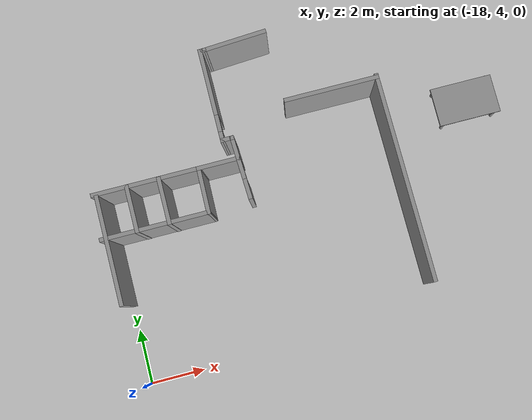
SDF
<sdf version="1.6">
 <world name="default">
  <model name="ground_plane">
   <static>1</static>
   <link name="link">
    <collision name="collision">
     <geometry><plane><normal>0 0 1</normal><size>100 100</size></plane></geometry>
     <surface>
      <contact><collide_bitmask>65535</collide_bitmask></contact>
      <friction><ode><mu>100</mu><mu2>50</mu2></ode></friction>
     </surface>
    </collision>
    <visual name="visual">
     <cast_shadows>0</cast_shadows>
     <geometry><plane><normal>0 0 1</normal><size>100 100</size></plane></geometry>
     <material>
      <script><uri>file://media/materials/scripts/gazebo.material</uri><name>Gazebo/Grey</name></script>
     </material>
    </visual>
   </link>
  </model>
  <model name="six_floor">
   <link name="Wall_164">
    <pose>-8.84778 6.9915 0 0 -0 1.58022</pose>
    <visual name="Wall_164_Visual">
     <pose>0 0 1.25 0 -0 0</pose>
     <geometry><box><size>7.67852 0.15 2.5</size></box></geometry>
     <material>
      <script><uri>file://media/materials/scripts/gazebo.material</uri><name>Gazebo/Grey</name></script>
      <ambient>1 1 1 1</ambient>
     </material>
     <meta><layer>0</layer></meta>
    </visual>
    <collision name="Wall_164_Collision">
     <pose>0 0 1.25 0 -0 0</pose>
     <geometry><box><size>7.67852 0.15 2.5</size></box></geometry>
     <surface>
      <friction>
       <ode><mu>1</mu><mu2>1</mu2><fdir1>0 0 0</fdir1><slip1>0</slip1><slip2>0</slip2></ode>
       <torsional>
        <coefficient>1</coefficient>
        <patch_radius>0</patch_radius>
        <surface_radius>0</surface_radius>
        <use_patch_radius>1</use_patch_radius>
        <ode><slip>0</slip></ode>
       </torsional>
      </friction>
      <bounce><restitution_coefficient>0</restitution_coefficient><threshold>1e+06</threshold></bounce>
      <contact>
       <collide_without_contact>0</collide_without_contact>
       <collide_without_contact_bitmask>1</collide_without_contact_bitmask>
       <collide_bitmask>1</collide_bitmask>
       <ode>
        <soft_cfm>0</soft_cfm>
        <soft_erp>0.2</soft_erp>
        <kp>1e+13</kp>
        <kd>1</kd>
        <max_vel>0.01</max_vel>
        <min_depth>0</min_depth>
       </ode>
       <bullet>
        <split_impulse>1</split_impulse>
        <split_impulse_penetration_threshold>-0.01</split_impulse_penetration_threshold>
        <soft_cfm>0</soft_cfm>
        <soft_erp>0.2</soft_erp>
        <kp>1e+13</kp>
        <kd>1</kd>
       </bullet>
      </contact>
     </surface>
    </collision>
   </link>
   <link name="Wall_165">
    <pose>-10.5582 10.702 0 0 -0 3.14159</pose>
    <visual name="Wall_165_Visual">
     <pose>0 0 1.25 0 -0 0</pose>
     <geometry><box><size>3.5 0.15 2.5</size></box></geometry>
     <material>
      <script><uri>file://media/materials/scripts/gazebo.material</uri><name>Gazebo/Grey</name></script>
      <ambient>1 1 1 1</ambient>
     </material>
     <meta><layer>0</layer></meta>
    </visual>
    <collision name="Wall_165_Collision">
     <pose>0 0 1.25 0 -0 0</pose>
     <geometry><box><size>3.5 0.15 2.5</size></box></geometry>
     <surface>
      <friction>
       <ode><mu>1</mu><mu2>1</mu2><fdir1>0 0 0</fdir1><slip1>0</slip1><slip2>0</slip2></ode>
       <torsional>
        <coefficient>1</coefficient>
        <patch_radius>0</patch_radius>
        <surface_radius>0</surface_radius>
        <use_patch_radius>1</use_patch_radius>
        <ode><slip>0</slip></ode>
       </torsional>
      </friction>
      <bounce><restitution_coefficient>0</restitution_coefficient><threshold>1e+06</threshold></bounce>
      <contact>
       <collide_without_contact>0</collide_without_contact>
       <collide_without_contact_bitmask>1</collide_without_contact_bitmask>
       <collide_bitmask>1</collide_bitmask>
       <ode>
        <soft_cfm>0</soft_cfm>
        <soft_erp>0.2</soft_erp>
        <kp>1e+13</kp>
        <kd>1</kd>
        <max_vel>0.01</max_vel>
        <min_depth>0</min_depth>
       </ode>
       <bullet>
        <split_impulse>1</split_impulse>
        <split_impulse_penetration_threshold>-0.01</split_impulse_penetration_threshold>
        <soft_cfm>0</soft_cfm>
        <soft_erp>0.2</soft_erp>
        <kp>1e+13</kp>
        <kd>1</kd>
       </bullet>
      </contact>
     </surface>
    </collision>
   </link>
   <link name="Wall_167">
    <pose>-14.3723 8.75538 0 0 0 -1.51974</pose>
    <visual name="Wall_167_Visual_0">
     <pose>-0.733465 0 1.25 0 -0 0</pose>
     <geometry><box><size>0.895207 0.15 2.5</size></box></geometry>
     <material>
      <script><uri>file://media/materials/scripts/gazebo.material</uri><name>Gazebo/Grey</name></script>
      <ambient>1 1 1 1</ambient>
     </material>
     <meta><layer>0</layer></meta>
    </visual>
    <visual name="Wall_167_Visual_1">
     <pose>0.807756 0 1.25 0 -0 0</pose>
     <geometry><box><size>0.746624 0.15 2.5</size></box></geometry>
     <material>
      <script><uri>file://media/materials/scripts/gazebo.material</uri><name>Gazebo/Grey</name></script>
      <ambient>1 1 1 1</ambient>
     </material>
     <meta><layer>0</layer></meta>
    </visual>
    <visual name="Wall_167_Visual_2">
     <pose>0.074292 0 2.25 0 -0 0</pose>
     <geometry><box><size>0.720305 0.15 0.5</size></box></geometry>
     <material>
      <script><uri>file://media/materials/scripts/gazebo.material</uri><name>Gazebo/Grey</name></script>
      <ambient>1 1 1 1</ambient>
     </material>
     <meta><layer>0</layer></meta>
    </visual>
    <collision name="Wall_167_Collision_0">
     <pose>-0.733465 0 1.25 0 -0 0</pose>
     <geometry><box><size>0.895207 0.15 2.5</size></box></geometry>
     <surface>
      <friction>
       <ode><mu>1</mu><mu2>1</mu2><fdir1>0 0 0</fdir1><slip1>0</slip1><slip2>0</slip2></ode>
       <torsional>
        <coefficient>1</coefficient>
        <patch_radius>0</patch_radius>
        <surface_radius>0</surface_radius>
        <use_patch_radius>1</use_patch_radius>
        <ode><slip>0</slip></ode>
       </torsional>
      </friction>
      <bounce><restitution_coefficient>0</restitution_coefficient><threshold>1e+06</threshold></bounce>
      <contact>
       <collide_without_contact>0</collide_without_contact>
       <collide_without_contact_bitmask>1</collide_without_contact_bitmask>
       <collide_bitmask>1</collide_bitmask>
       <ode>
        <soft_cfm>0</soft_cfm>
        <soft_erp>0.2</soft_erp>
        <kp>1e+13</kp>
        <kd>1</kd>
        <max_vel>0.01</max_vel>
        <min_depth>0</min_depth>
       </ode>
       <bullet>
        <split_impulse>1</split_impulse>
        <split_impulse_penetration_threshold>-0.01</split_impulse_penetration_threshold>
        <soft_cfm>0</soft_cfm>
        <soft_erp>0.2</soft_erp>
        <kp>1e+13</kp>
        <kd>1</kd>
       </bullet>
      </contact>
     </surface>
    </collision>
    <collision name="Wall_167_Collision_1">
     <pose>0.807756 0 1.25 0 -0 0</pose>
     <geometry><box><size>0.746624 0.15 2.5</size></box></geometry>
     <surface>
      <friction>
       <ode><mu>1</mu><mu2>1</mu2><fdir1>0 0 0</fdir1><slip1>0</slip1><slip2>0</slip2></ode>
       <torsional>
        <coefficient>1</coefficient>
        <patch_radius>0</patch_radius>
        <surface_radius>0</surface_radius>
        <use_patch_radius>1</use_patch_radius>
        <ode><slip>0</slip></ode>
       </torsional>
      </friction>
      <bounce><restitution_coefficient>0</restitution_coefficient><threshold>1e+06</threshold></bounce>
      <contact>
       <collide_without_contact>0</collide_without_contact>
       <collide_without_contact_bitmask>1</collide_without_contact_bitmask>
       <collide_bitmask>1</collide_bitmask>
       <ode>
        <soft_cfm>0</soft_cfm>
        <soft_erp>0.2</soft_erp>
        <kp>1e+13</kp>
        <kd>1</kd>
        <max_vel>0.01</max_vel>
        <min_depth>0</min_depth>
       </ode>
       <bullet>
        <split_impulse>1</split_impulse>
        <split_impulse_penetration_threshold>-0.01</split_impulse_penetration_threshold>
        <soft_cfm>0</soft_cfm>
        <soft_erp>0.2</soft_erp>
        <kp>1e+13</kp>
        <kd>1</kd>
       </bullet>
      </contact>
     </surface>
    </collision>
    <collision name="Wall_167_Collision_2">
     <pose>0.074292 0 2.25 0 -0 0</pose>
     <geometry><box><size>0.720305 0.15 0.5</size></box></geometry>
     <surface>
      <friction>
       <ode><mu>1</mu><mu2>1</mu2><fdir1>0 0 0</fdir1><slip1>0</slip1><slip2>0</slip2></ode>
       <torsional>
        <coefficient>1</coefficient>
        <patch_radius>0</patch_radius>
        <surface_radius>0</surface_radius>
        <use_patch_radius>1</use_patch_radius>
        <ode><slip>0</slip></ode>
       </torsional>
      </friction>
      <bounce><restitution_coefficient>0</restitution_coefficient><threshold>1e+06</threshold></bounce>
      <contact>
       <collide_without_contact>0</collide_without_contact>
       <collide_without_contact_bitmask>1</collide_without_contact_bitmask>
       <collide_bitmask>1</collide_bitmask>
       <ode>
        <soft_cfm>0</soft_cfm>
        <soft_erp>0.2</soft_erp>
        <kp>1e+13</kp>
        <kd>1</kd>
        <max_vel>0.01</max_vel>
        <min_depth>0</min_depth>
       </ode>
       <bullet>
        <split_impulse>1</split_impulse>
        <split_impulse_penetration_threshold>-0.01</split_impulse_penetration_threshold>
        <soft_cfm>0</soft_cfm>
        <soft_erp>0.2</soft_erp>
        <kp>1e+13</kp>
        <kd>1</kd>
       </bullet>
      </contact>
     </surface>
    </collision>
   </link>
   <link name="Wall_169">
    <pose>-14.6001 9.85875 0 0 -0 0.007397</pose>
    <visual name="Wall_169_Visual">
     <pose>0 0 1.25 0 -0 0</pose>
     <geometry><box><size>0.492569 0.15 2.5</size></box></geometry>
     <material>
      <script><uri>file://media/materials/scripts/gazebo.material</uri><name>Gazebo/Grey</name></script>
      <ambient>1 1 1 1</ambient>
     </material>
     <meta><layer>0</layer></meta>
    </visual>
    <collision name="Wall_169_Collision">
     <pose>0 0 1.25 0 -0 0</pose>
     <geometry><box><size>0.492569 0.15 2.5</size></box></geometry>
     <surface>
      <friction>
       <ode><mu>1</mu><mu2>1</mu2><fdir1>0 0 0</fdir1><slip1>0</slip1><slip2>0</slip2></ode>
       <torsional>
        <coefficient>1</coefficient>
        <patch_radius>0</patch_radius>
        <surface_radius>0</surface_radius>
        <use_patch_radius>1</use_patch_radius>
        <ode><slip>0</slip></ode>
       </torsional>
      </friction>
      <bounce><restitution_coefficient>0</restitution_coefficient><threshold>1e+06</threshold></bounce>
      <contact>
       <collide_without_contact>0</collide_without_contact>
       <collide_without_contact_bitmask>1</collide_without_contact_bitmask>
       <collide_bitmask>1</collide_bitmask>
       <ode>
        <soft_cfm>0</soft_cfm>
        <soft_erp>0.2</soft_erp>
        <kp>1e+13</kp>
        <kd>1</kd>
        <max_vel>0.01</max_vel>
        <min_depth>0</min_depth>
       </ode>
       <bullet>
        <split_impulse>1</split_impulse>
        <split_impulse_penetration_threshold>-0.01</split_impulse_penetration_threshold>
        <soft_cfm>0</soft_cfm>
        <soft_erp>0.2</soft_erp>
        <kp>1e+13</kp>
        <kd>1</kd>
       </bullet>
      </contact>
     </surface>
    </collision>
   </link>
   <link name="Wall_171">
    <pose>-15.1186 9.09421 0 0 -0 3.14159</pose>
    <visual name="Wall_171_Visual">
     <pose>0 0 1.25 0 -0 0</pose>
     <geometry><box><size>1.58 0.15 2.5</size></box></geometry>
     <material>
      <script><uri>file://media/materials/scripts/gazebo.material</uri><name>Gazebo/Grey</name></script>
      <ambient>1 1 1 1</ambient>
     </material>
     <meta><layer>0</layer></meta>
    </visual>
    <collision name="Wall_171_Collision">
     <pose>0 0 1.25 0 -0 0</pose>
     <geometry><box><size>1.58 0.15 2.5</size></box></geometry>
     <surface>
      <friction>
       <ode><mu>1</mu><mu2>1</mu2><fdir1>0 0 0</fdir1><slip1>0</slip1><slip2>0</slip2></ode>
       <torsional>
        <coefficient>1</coefficient>
        <patch_radius>0</patch_radius>
        <surface_radius>0</surface_radius>
        <use_patch_radius>1</use_patch_radius>
        <ode><slip>0</slip></ode>
       </torsional>
      </friction>
      <bounce><restitution_coefficient>0</restitution_coefficient><threshold>1e+06</threshold></bounce>
      <contact>
       <collide_without_contact>0</collide_without_contact>
       <collide_without_contact_bitmask>1</collide_without_contact_bitmask>
       <collide_bitmask>1</collide_bitmask>
       <ode>
        <soft_cfm>0</soft_cfm>
        <soft_erp>0.2</soft_erp>
        <kp>1e+13</kp>
        <kd>1</kd>
        <max_vel>0.01</max_vel>
        <min_depth>0</min_depth>
       </ode>
       <bullet>
        <split_impulse>1</split_impulse>
        <split_impulse_penetration_threshold>-0.01</split_impulse_penetration_threshold>
        <soft_cfm>0</soft_cfm>
        <soft_erp>0.2</soft_erp>
        <kp>1e+13</kp>
        <kd>1</kd>
       </bullet>
      </contact>
     </surface>
    </collision>
   </link>
   <link name="Wall_172">
    <pose>-15.8469 8.29421 0 0 0 -1.58746</pose>
    <visual name="Wall_172_Visual">
     <pose>0 0 1.25 0 -0 0</pose>
     <geometry><box><size>1.75089 0.15 2.5</size></box></geometry>
     <material>
      <script><uri>file://media/materials/scripts/gazebo.material</uri><name>Gazebo/Grey</name></script>
      <ambient>1 1 1 1</ambient>
     </material>
     <meta><layer>0</layer></meta>
    </visual>
    <collision name="Wall_172_Collision">
     <pose>0 0 1.25 0 -0 0</pose>
     <geometry><box><size>1.75089 0.15 2.5</size></box></geometry>
     <surface>
      <friction>
       <ode><mu>1</mu><mu2>1</mu2><fdir1>0 0 0</fdir1><slip1>0</slip1><slip2>0</slip2></ode>
       <torsional>
        <coefficient>1</coefficient>
        <patch_radius>0</patch_radius>
        <surface_radius>0</surface_radius>
        <use_patch_radius>1</use_patch_radius>
        <ode><slip>0</slip></ode>
       </torsional>
      </friction>
      <bounce><restitution_coefficient>0</restitution_coefficient><threshold>1e+06</threshold></bounce>
      <contact>
       <collide_without_contact>0</collide_without_contact>
       <collide_without_contact_bitmask>1</collide_without_contact_bitmask>
       <collide_bitmask>1</collide_bitmask>
       <ode>
        <soft_cfm>0</soft_cfm>
        <soft_erp>0.2</soft_erp>
        <kp>1e+13</kp>
        <kd>1</kd>
        <max_vel>0.01</max_vel>
        <min_depth>0</min_depth>
       </ode>
       <bullet>
        <split_impulse>1</split_impulse>
        <split_impulse_penetration_threshold>-0.01</split_impulse_penetration_threshold>
        <soft_cfm>0</soft_cfm>
        <soft_erp>0.2</soft_erp>
        <kp>1e+13</kp>
        <kd>1</kd>
       </bullet>
      </contact>
     </surface>
    </collision>
   </link>
   <link name="Wall_177">
    <pose>-17.7319 9.09421 0 0 -0 3.14159</pose>
    <visual name="Wall_177_Visual">
     <pose>0 0 1.25 0 -0 0</pose>
     <geometry><box><size>4 0.15 2.5</size></box></geometry>
     <material>
      <script><uri>file://media/materials/scripts/gazebo.material</uri><name>Gazebo/Grey</name></script>
      <ambient>1 1 1 1</ambient>
     </material>
     <meta><layer>0</layer></meta>
    </visual>
    <collision name="Wall_177_Collision">
     <pose>0 0 1.25 0 -0 0</pose>
     <geometry><box><size>4 0.15 2.5</size></box></geometry>
     <surface>
      <friction>
       <ode><mu>1</mu><mu2>1</mu2><fdir1>0 0 0</fdir1><slip1>0</slip1><slip2>0</slip2></ode>
       <torsional>
        <coefficient>1</coefficient>
        <patch_radius>0</patch_radius>
        <surface_radius>0</surface_radius>
        <use_patch_radius>1</use_patch_radius>
        <ode><slip>0</slip></ode>
       </torsional>
      </friction>
      <bounce><restitution_coefficient>0</restitution_coefficient><threshold>1e+06</threshold></bounce>
      <contact>
       <collide_without_contact>0</collide_without_contact>
       <collide_without_contact_bitmask>1</collide_without_contact_bitmask>
       <collide_bitmask>1</collide_bitmask>
       <ode>
        <soft_cfm>0</soft_cfm>
        <soft_erp>0.2</soft_erp>
        <kp>1e+13</kp>
        <kd>1</kd>
        <max_vel>0.01</max_vel>
        <min_depth>0</min_depth>
       </ode>
       <bullet>
        <split_impulse>1</split_impulse>
        <split_impulse_penetration_threshold>-0.01</split_impulse_penetration_threshold>
        <soft_cfm>0</soft_cfm>
        <soft_erp>0.2</soft_erp>
        <kp>1e+13</kp>
        <kd>1</kd>
       </bullet>
      </contact>
     </surface>
    </collision>
   </link>
   <link name="Wall_179">
    <pose>-19.5446 7.0686 0 0 -0 1.5708</pose>
    <visual name="Wall_179_Visual">
     <pose>0 0 1.25 0 -0 0</pose>
     <geometry><box><size>4 0.15 2.5</size></box></geometry>
     <material>
      <script><uri>file://media/materials/scripts/gazebo.material</uri><name>Gazebo/Grey</name></script>
      <ambient>1 1 1 1</ambient>
     </material>
     <meta><layer>0</layer></meta>
    </visual>
    <collision name="Wall_179_Collision">
     <pose>0 0 1.25 0 -0 0</pose>
     <geometry><box><size>4 0.15 2.5</size></box></geometry>
     <surface>
      <friction>
       <ode><mu>1</mu><mu2>1</mu2><fdir1>0 0 0</fdir1><slip1>0</slip1><slip2>0</slip2></ode>
       <torsional>
        <coefficient>1</coefficient>
        <patch_radius>0</patch_radius>
        <surface_radius>0</surface_radius>
        <use_patch_radius>1</use_patch_radius>
        <ode><slip>0</slip></ode>
       </torsional>
      </friction>
      <bounce><restitution_coefficient>0</restitution_coefficient><threshold>1e+06</threshold></bounce>
      <contact>
       <collide_without_contact>0</collide_without_contact>
       <collide_without_contact_bitmask>1</collide_without_contact_bitmask>
       <collide_bitmask>1</collide_bitmask>
       <ode>
        <soft_cfm>0</soft_cfm>
        <soft_erp>0.2</soft_erp>
        <kp>1e+13</kp>
        <kd>1</kd>
        <max_vel>0.01</max_vel>
        <min_depth>0</min_depth>
       </ode>
       <bullet>
        <split_impulse>1</split_impulse>
        <split_impulse_penetration_threshold>-0.01</split_impulse_penetration_threshold>
        <soft_cfm>0</soft_cfm>
        <soft_erp>0.2</soft_erp>
        <kp>1e+13</kp>
        <kd>1</kd>
       </bullet>
      </contact>
     </surface>
    </collision>
   </link>
   <link name="Wall_187">
    <pose>-17.7852 7.49421 0 0 -0 3.14159</pose>
    <visual name="Wall_187_Visual">
     <pose>0 0 1.25 0 -0 0</pose>
     <geometry><box><size>4 0.15 2.5</size></box></geometry>
     <material>
      <script><uri>file://media/materials/scripts/gazebo.material</uri><name>Gazebo/Grey</name></script>
      <ambient>1 1 1 1</ambient>
     </material>
     <meta><layer>0</layer></meta>
    </visual>
    <collision name="Wall_187_Collision">
     <pose>0 0 1.25 0 -0 0</pose>
     <geometry><box><size>4 0.15 2.5</size></box></geometry>
     <surface>
      <friction>
       <ode><mu>1</mu><mu2>1</mu2><fdir1>0 0 0</fdir1><slip1>0</slip1><slip2>0</slip2></ode>
       <torsional>
        <coefficient>1</coefficient>
        <patch_radius>0</patch_radius>
        <surface_radius>0</surface_radius>
        <use_patch_radius>1</use_patch_radius>
        <ode><slip>0</slip></ode>
       </torsional>
      </friction>
      <bounce><restitution_coefficient>0</restitution_coefficient><threshold>1e+06</threshold></bounce>
      <contact>
       <collide_without_contact>0</collide_without_contact>
       <collide_without_contact_bitmask>1</collide_without_contact_bitmask>
       <collide_bitmask>1</collide_bitmask>
       <ode>
        <soft_cfm>0</soft_cfm>
        <soft_erp>0.2</soft_erp>
        <kp>1e+13</kp>
        <kd>1</kd>
        <max_vel>0.01</max_vel>
        <min_depth>0</min_depth>
       </ode>
       <bullet>
        <split_impulse>1</split_impulse>
        <split_impulse_penetration_threshold>-0.01</split_impulse_penetration_threshold>
        <soft_cfm>0</soft_cfm>
        <soft_erp>0.2</soft_erp>
        <kp>1e+13</kp>
        <kd>1</kd>
       </bullet>
      </contact>
     </surface>
    </collision>
   </link>
   <link name="Wall_189">
    <pose>-18.4371 8.28215 0 0 0 -1.5708</pose>
    <visual name="Wall_189_Visual">
     <pose>0 0 1.25 0 -0 0</pose>
     <geometry><box><size>1.75 0.15 2.5</size></box></geometry>
     <material>
      <script><uri>file://media/materials/scripts/gazebo.material</uri><name>Gazebo/Grey</name></script>
      <ambient>1 1 1 1</ambient>
     </material>
     <meta><layer>0</layer></meta>
    </visual>
    <collision name="Wall_189_Collision">
     <pose>0 0 1.25 0 -0 0</pose>
     <geometry><box><size>1.75 0.15 2.5</size></box></geometry>
     <surface>
      <friction>
       <ode><mu>1</mu><mu2>1</mu2><fdir1>0 0 0</fdir1><slip1>0</slip1><slip2>0</slip2></ode>
       <torsional>
        <coefficient>1</coefficient>
        <patch_radius>0</patch_radius>
        <surface_radius>0</surface_radius>
        <use_patch_radius>1</use_patch_radius>
        <ode><slip>0</slip></ode>
       </torsional>
      </friction>
      <bounce><restitution_coefficient>0</restitution_coefficient><threshold>1e+06</threshold></bounce>
      <contact>
       <collide_without_contact>0</collide_without_contact>
       <collide_without_contact_bitmask>1</collide_without_contact_bitmask>
       <collide_bitmask>1</collide_bitmask>
       <ode>
        <soft_cfm>0</soft_cfm>
        <soft_erp>0.2</soft_erp>
        <kp>1e+13</kp>
        <kd>1</kd>
        <max_vel>0.01</max_vel>
        <min_depth>0</min_depth>
       </ode>
       <bullet>
        <split_impulse>1</split_impulse>
        <split_impulse_penetration_threshold>-0.01</split_impulse_penetration_threshold>
        <soft_cfm>0</soft_cfm>
        <soft_erp>0.2</soft_erp>
        <kp>1e+13</kp>
        <kd>1</kd>
       </bullet>
      </contact>
     </surface>
    </collision>
   </link>
   <link name="Wall_191">
    <pose>-17.2777 8.28215 0 0 0 -1.5708</pose>
    <visual name="Wall_191_Visual">
     <pose>0 0 1.25 0 -0 0</pose>
     <geometry><box><size>1.75 0.15 2.5</size></box></geometry>
     <material>
      <script><uri>file://media/materials/scripts/gazebo.material</uri><name>Gazebo/Grey</name></script>
      <ambient>1 1 1 1</ambient>
     </material>
     <meta><layer>0</layer></meta>
    </visual>
    <collision name="Wall_191_Collision">
     <pose>0 0 1.25 0 -0 0</pose>
     <geometry><box><size>1.75 0.15 2.5</size></box></geometry>
     <surface>
      <friction>
       <ode><mu>1</mu><mu2>1</mu2><fdir1>0 0 0</fdir1><slip1>0</slip1><slip2>0</slip2></ode>
       <torsional>
        <coefficient>1</coefficient>
        <patch_radius>0</patch_radius>
        <surface_radius>0</surface_radius>
        <use_patch_radius>1</use_patch_radius>
        <ode><slip>0</slip></ode>
       </torsional>
      </friction>
      <bounce><restitution_coefficient>0</restitution_coefficient><threshold>1e+06</threshold></bounce>
      <contact>
       <collide_without_contact>0</collide_without_contact>
       <collide_without_contact_bitmask>1</collide_without_contact_bitmask>
       <collide_bitmask>1</collide_bitmask>
       <ode>
        <soft_cfm>0</soft_cfm>
        <soft_erp>0.2</soft_erp>
        <kp>1e+13</kp>
        <kd>1</kd>
        <max_vel>0.01</max_vel>
        <min_depth>0</min_depth>
       </ode>
       <bullet>
        <split_impulse>1</split_impulse>
        <split_impulse_penetration_threshold>-0.01</split_impulse_penetration_threshold>
        <soft_cfm>0</soft_cfm>
        <soft_erp>0.2</soft_erp>
        <kp>1e+13</kp>
        <kd>1</kd>
       </bullet>
      </contact>
     </surface>
    </collision>
   </link>
   <link name="Wall_62">
    <pose>-14.7713 11.5325 0 0 -0 1.5708</pose>
    <visual name="Wall_62_Visual_0">
     <pose>-1.55319 0 1.25 0 -0 0</pose>
     <geometry><box><size>0.393625 0.15 2.5</size></box></geometry>
     <material>
      <script><uri>file://media/materials/scripts/gazebo.material</uri><name>Gazebo/Grey</name></script>
      <ambient>1 1 1 1</ambient>
     </material>
     <meta><layer>0</layer></meta>
    </visual>
    <visual name="Wall_62_Visual_1">
     <pose>0.507603 0 1.25 0 -0 0</pose>
     <geometry><box><size>2.48479 0.15 2.5</size></box></geometry>
     <material>
      <script><uri>file://media/materials/scripts/gazebo.material</uri><name>Gazebo/Grey</name></script>
      <ambient>1 1 1 1</ambient>
     </material>
     <meta><layer>0</layer></meta>
    </visual>
    <visual name="Wall_62_Visual_2">
     <pose>-1.04558 0 2.25 0 -0 0</pose>
     <geometry><box><size>0.621581 0.15 0.5</size></box></geometry>
     <material>
      <script><uri>file://media/materials/scripts/gazebo.material</uri><name>Gazebo/Grey</name></script>
      <ambient>1 1 1 1</ambient>
     </material>
     <meta><layer>0</layer></meta>
    </visual>
    <collision name="Wall_62_Collision_0">
     <pose>-1.55319 0 1.25 0 -0 0</pose>
     <geometry><box><size>0.393625 0.15 2.5</size></box></geometry>
     <surface>
      <friction>
       <ode><mu>1</mu><mu2>1</mu2><fdir1>0 0 0</fdir1><slip1>0</slip1><slip2>0</slip2></ode>
       <torsional>
        <coefficient>1</coefficient>
        <patch_radius>0</patch_radius>
        <surface_radius>0</surface_radius>
        <use_patch_radius>1</use_patch_radius>
        <ode><slip>0</slip></ode>
       </torsional>
      </friction>
      <bounce><restitution_coefficient>0</restitution_coefficient><threshold>1e+06</threshold></bounce>
      <contact>
       <collide_without_contact>0</collide_without_contact>
       <collide_without_contact_bitmask>1</collide_without_contact_bitmask>
       <collide_bitmask>1</collide_bitmask>
       <ode>
        <soft_cfm>0</soft_cfm>
        <soft_erp>0.2</soft_erp>
        <kp>1e+13</kp>
        <kd>1</kd>
        <max_vel>0.01</max_vel>
        <min_depth>0</min_depth>
       </ode>
       <bullet>
        <split_impulse>1</split_impulse>
        <split_impulse_penetration_threshold>-0.01</split_impulse_penetration_threshold>
        <soft_cfm>0</soft_cfm>
        <soft_erp>0.2</soft_erp>
        <kp>1e+13</kp>
        <kd>1</kd>
       </bullet>
      </contact>
     </surface>
    </collision>
    <collision name="Wall_62_Collision_1">
     <pose>0.507603 0 1.25 0 -0 0</pose>
     <geometry><box><size>2.48479 0.15 2.5</size></box></geometry>
     <surface>
      <friction>
       <ode><mu>1</mu><mu2>1</mu2><fdir1>0 0 0</fdir1><slip1>0</slip1><slip2>0</slip2></ode>
       <torsional>
        <coefficient>1</coefficient>
        <patch_radius>0</patch_radius>
        <surface_radius>0</surface_radius>
        <use_patch_radius>1</use_patch_radius>
        <ode><slip>0</slip></ode>
       </torsional>
      </friction>
      <bounce><restitution_coefficient>0</restitution_coefficient><threshold>1e+06</threshold></bounce>
      <contact>
       <collide_without_contact>0</collide_without_contact>
       <collide_without_contact_bitmask>1</collide_without_contact_bitmask>
       <collide_bitmask>1</collide_bitmask>
       <ode>
        <soft_cfm>0</soft_cfm>
        <soft_erp>0.2</soft_erp>
        <kp>1e+13</kp>
        <kd>1</kd>
        <max_vel>0.01</max_vel>
        <min_depth>0</min_depth>
       </ode>
       <bullet>
        <split_impulse>1</split_impulse>
        <split_impulse_penetration_threshold>-0.01</split_impulse_penetration_threshold>
        <soft_cfm>0</soft_cfm>
        <soft_erp>0.2</soft_erp>
        <kp>1e+13</kp>
        <kd>1</kd>
       </bullet>
      </contact>
     </surface>
    </collision>
    <collision name="Wall_62_Collision_2">
     <pose>-1.04558 0 2.25 0 -0 0</pose>
     <geometry><box><size>0.621581 0.15 0.5</size></box></geometry>
     <surface>
      <friction>
       <ode><mu>1</mu><mu2>1</mu2><fdir1>0 0 0</fdir1><slip1>0</slip1><slip2>0</slip2></ode>
       <torsional>
        <coefficient>1</coefficient>
        <patch_radius>0</patch_radius>
        <surface_radius>0</surface_radius>
        <use_patch_radius>1</use_patch_radius>
        <ode><slip>0</slip></ode>
       </torsional>
      </friction>
      <bounce><restitution_coefficient>0</restitution_coefficient><threshold>1e+06</threshold></bounce>
      <contact>
       <collide_without_contact>0</collide_without_contact>
       <collide_without_contact_bitmask>1</collide_without_contact_bitmask>
       <collide_bitmask>1</collide_bitmask>
       <ode>
        <soft_cfm>0</soft_cfm>
        <soft_erp>0.2</soft_erp>
        <kp>1e+13</kp>
        <kd>1</kd>
        <max_vel>0.01</max_vel>
        <min_depth>0</min_depth>
       </ode>
       <bullet>
        <split_impulse>1</split_impulse>
        <split_impulse_penetration_threshold>-0.01</split_impulse_penetration_threshold>
        <soft_cfm>0</soft_cfm>
        <soft_erp>0.2</soft_erp>
        <kp>1e+13</kp>
        <kd>1</kd>
       </bullet>
      </contact>
     </surface>
    </collision>
   </link>
   <link name="Wall_64">
    <pose>-14.6972 13.2099 0 0 -0 0.032197</pose>
    <visual name="Wall_64_Visual">
     <pose>0 0 1.25 0 -0 0</pose>
     <geometry><box><size>0.298394 0.15 2.5</size></box></geometry>
     <material>
      <script><uri>file://media/materials/scripts/gazebo.material</uri><name>Gazebo/Grey</name></script>
      <ambient>1 1 1 1</ambient>
     </material>
     <meta><layer>0</layer></meta>
    </visual>
    <collision name="Wall_64_Collision">
     <pose>0 0 1.25 0 -0 0</pose>
     <geometry><box><size>0.298394 0.15 2.5</size></box></geometry>
     <surface>
      <friction>
       <ode><mu>1</mu><mu2>1</mu2><fdir1>0 0 0</fdir1><slip1>0</slip1><slip2>0</slip2></ode>
       <torsional>
        <coefficient>1</coefficient>
        <patch_radius>0</patch_radius>
        <surface_radius>0</surface_radius>
        <use_patch_radius>1</use_patch_radius>
        <ode><slip>0</slip></ode>
       </torsional>
      </friction>
      <bounce><restitution_coefficient>0</restitution_coefficient><threshold>1e+06</threshold></bounce>
      <contact>
       <collide_without_contact>0</collide_without_contact>
       <collide_without_contact_bitmask>1</collide_without_contact_bitmask>
       <collide_bitmask>1</collide_bitmask>
       <ode>
        <soft_cfm>0</soft_cfm>
        <soft_erp>0.2</soft_erp>
        <kp>1e+13</kp>
        <kd>1</kd>
        <max_vel>0.01</max_vel>
        <min_depth>0</min_depth>
       </ode>
       <bullet>
        <split_impulse>1</split_impulse>
        <split_impulse_penetration_threshold>-0.01</split_impulse_penetration_threshold>
        <soft_cfm>0</soft_cfm>
        <soft_erp>0.2</soft_erp>
        <kp>1e+13</kp>
        <kd>1</kd>
       </bullet>
      </contact>
     </surface>
    </collision>
   </link>
   <link name="Wall_70">
    <pose>-13.498 13.2813 0 0 -0 0.061257</pose>
    <visual name="Wall_70_Visual">
     <pose>0 0 1.25 0 -0 0</pose>
     <geometry><box><size>2.40423 0.15 2.5</size></box></geometry>
     <material>
      <script><uri>file://media/materials/scripts/gazebo.material</uri><name>Gazebo/Grey</name></script>
      <ambient>1 1 1 1</ambient>
     </material>
     <meta><layer>0</layer></meta>
    </visual>
    <collision name="Wall_70_Collision">
     <pose>0 0 1.25 0 -0 0</pose>
     <geometry><box><size>2.40423 0.15 2.5</size></box></geometry>
     <surface>
      <friction>
       <ode><mu>1</mu><mu2>1</mu2><fdir1>0 0 0</fdir1><slip1>0</slip1><slip2>0</slip2></ode>
       <torsional>
        <coefficient>1</coefficient>
        <patch_radius>0</patch_radius>
        <surface_radius>0</surface_radius>
        <use_patch_radius>1</use_patch_radius>
        <ode><slip>0</slip></ode>
       </torsional>
      </friction>
      <bounce><restitution_coefficient>0</restitution_coefficient><threshold>1e+06</threshold></bounce>
      <contact>
       <collide_without_contact>0</collide_without_contact>
       <collide_without_contact_bitmask>1</collide_without_contact_bitmask>
       <collide_bitmask>1</collide_bitmask>
       <ode>
        <soft_cfm>0</soft_cfm>
        <soft_erp>0.2</soft_erp>
        <kp>1e+13</kp>
        <kd>1</kd>
        <max_vel>0.01</max_vel>
        <min_depth>0</min_depth>
       </ode>
       <bullet>
        <split_impulse>1</split_impulse>
        <split_impulse_penetration_threshold>-0.01</split_impulse_penetration_threshold>
        <soft_cfm>0</soft_cfm>
        <soft_erp>0.2</soft_erp>
        <kp>1e+13</kp>
        <kd>1</kd>
       </bullet>
      </contact>
     </surface>
    </collision>
   </link>
   <static>1</static>
   <pose>1.59766 1.83874 0 0 -0 0</pose>
  </model>
  <model name="table1">
   <link name="link_0">
    <inertial>
     <mass>0.0138978</mass>
     <inertia>
      <ixx>0.000753284</ixx>
      <ixy>0</ixy>
      <ixz>0</ixz>
      <iyy>0.000753284</iyy>
      <iyz>0</iyz>
      <izz>2.41414e-05</izz>
     </inertia>
    </inertial>
    <pose>-0.986535 -0.645852 -0.081533 0 -0 0</pose>
    <visual name="visual">
     <geometry><cylinder><radius>0.0589418</radius><length>0.8</length></cylinder></geometry>
     <material>
      <lighting>1</lighting>
      <script><uri>file://media/materials/scripts/gazebo.material</uri><name>Gazebo/Grey</name></script>
      <shader type="vertex"><normal_map>__default__</normal_map></shader>
      <ambient>0.3 0.3 0.3 1</ambient>
      <diffuse>0.7 0.7 0.7 1</diffuse>
      <specular>0.01 0.01 0.01 1</specular>
      <emissive>0 0 0 1</emissive>
     </material>
    </visual>
    <collision name="collision">
     <geometry><cylinder><radius>0.058942</radius><length>0.8</length></cylinder></geometry>
     <surface>
      <friction>
       <ode><mu>1</mu><mu2>1</mu2><fdir1>0 0 0</fdir1><slip1>0</slip1><slip2>0</slip2></ode>
       <torsional>
        <coefficient>1</coefficient>
        <patch_radius>0</patch_radius>
        <surface_radius>0</surface_radius>
        <use_patch_radius>1</use_patch_radius>
        <ode><slip>0</slip></ode>
       </torsional>
      </friction>
      <bounce><restitution_coefficient>0</restitution_coefficient><threshold>1e+06</threshold></bounce>
      <contact>
       <collide_without_contact>0</collide_without_contact>
       <collide_without_contact_bitmask>1</collide_without_contact_bitmask>
       <collide_bitmask>1</collide_bitmask>
       <ode>
        <soft_cfm>0</soft_cfm>
        <soft_erp>0.2</soft_erp>
        <kp>1e+13</kp>
        <kd>1</kd>
        <max_vel>0.01</max_vel>
        <min_depth>0</min_depth>
       </ode>
       <bullet>
        <split_impulse>1</split_impulse>
        <split_impulse_penetration_threshold>-0.01</split_impulse_penetration_threshold>
        <soft_cfm>0</soft_cfm>
        <soft_erp>0.2</soft_erp>
        <kp>1e+13</kp>
        <kd>1</kd>
       </bullet>
      </contact>
     </surface>
    </collision>
   </link>
   <link name="link_0_clone">
    <inertial>
     <mass>0.0138978</mass>
     <inertia>
      <ixx>0.000753284</ixx>
      <ixy>0</ixy>
      <ixz>0</ixz>
      <iyy>0.000753284</iyy>
      <iyz>0</iyz>
      <izz>2.41414e-05</izz>
     </inertia>
    </inertial>
    <pose>-1.00558 0.645455 -0.081533 0 -0 0</pose>
    <visual name="visual">
     <geometry><cylinder><radius>0.0589418</radius><length>0.8</length></cylinder></geometry>
     <material>
      <lighting>1</lighting>
      <script><uri>file://media/materials/scripts/gazebo.material</uri><name>Gazebo/Grey</name></script>
      <shader type="vertex"><normal_map>__default__</normal_map></shader>
      <ambient>0.3 0.3 0.3 1</ambient>
      <diffuse>0.7 0.7 0.7 1</diffuse>
      <specular>0.01 0.01 0.01 1</specular>
      <emissive>0 0 0 1</emissive>
     </material>
    </visual>
    <collision name="collision">
     <geometry><cylinder><radius>0.058942</radius><length>0.8</length></cylinder></geometry>
     <surface>
      <friction>
       <ode><mu>1</mu><mu2>1</mu2><fdir1>0 0 0</fdir1><slip1>0</slip1><slip2>0</slip2></ode>
       <torsional>
        <coefficient>1</coefficient>
        <patch_radius>0</patch_radius>
        <surface_radius>0</surface_radius>
        <use_patch_radius>1</use_patch_radius>
        <ode><slip>0</slip></ode>
       </torsional>
      </friction>
      <bounce><restitution_coefficient>0</restitution_coefficient><threshold>1e+06</threshold></bounce>
      <contact>
       <collide_without_contact>0</collide_without_contact>
       <collide_without_contact_bitmask>1</collide_without_contact_bitmask>
       <collide_bitmask>1</collide_bitmask>
       <ode>
        <soft_cfm>0</soft_cfm>
        <soft_erp>0.2</soft_erp>
        <kp>1e+13</kp>
        <kd>1</kd>
        <max_vel>0.01</max_vel>
        <min_depth>0</min_depth>
       </ode>
       <bullet>
        <split_impulse>1</split_impulse>
        <split_impulse_penetration_threshold>-0.01</split_impulse_penetration_threshold>
        <soft_cfm>0</soft_cfm>
        <soft_erp>0.2</soft_erp>
        <kp>1e+13</kp>
        <kd>1</kd>
       </bullet>
      </contact>
     </surface>
    </collision>
   </link>
   <link name="link_0_clone_0">
    <inertial>
     <mass>0.0138978</mass>
     <inertia>
      <ixx>0.000753284</ixx>
      <ixy>0</ixy>
      <ixz>0</ixz>
      <iyy>0.000753284</iyy>
      <iyz>0</iyz>
      <izz>2.41414e-05</izz>
     </inertia>
    </inertial>
    <pose>0.995821 -0.65431 -0.081533 0 -0 0</pose>
    <visual name="visual">
     <geometry><cylinder><radius>0.0589418</radius><length>0.8</length></cylinder></geometry>
     <material>
      <lighting>1</lighting>
      <script><uri>file://media/materials/scripts/gazebo.material</uri><name>Gazebo/Grey</name></script>
      <shader type="vertex"><normal_map>__default__</normal_map></shader>
      <ambient>0.3 0.3 0.3 1</ambient>
      <diffuse>0.7 0.7 0.7 1</diffuse>
      <specular>0.01 0.01 0.01 1</specular>
      <emissive>0 0 0 1</emissive>
     </material>
    </visual>
    <collision name="collision">
     <geometry><cylinder><radius>0.058942</radius><length>0.8</length></cylinder></geometry>
     <surface>
      <friction>
       <ode><mu>1</mu><mu2>1</mu2><fdir1>0 0 0</fdir1><slip1>0</slip1><slip2>0</slip2></ode>
       <torsional>
        <coefficient>1</coefficient>
        <patch_radius>0</patch_radius>
        <surface_radius>0</surface_radius>
        <use_patch_radius>1</use_patch_radius>
        <ode><slip>0</slip></ode>
       </torsional>
      </friction>
      <bounce><restitution_coefficient>0</restitution_coefficient><threshold>1e+06</threshold></bounce>
      <contact>
       <collide_without_contact>0</collide_without_contact>
       <collide_without_contact_bitmask>1</collide_without_contact_bitmask>
       <collide_bitmask>1</collide_bitmask>
       <ode>
        <soft_cfm>0</soft_cfm>
        <soft_erp>0.2</soft_erp>
        <kp>1e+13</kp>
        <kd>1</kd>
        <max_vel>0.01</max_vel>
        <min_depth>0</min_depth>
       </ode>
       <bullet>
        <split_impulse>1</split_impulse>
        <split_impulse_penetration_threshold>-0.01</split_impulse_penetration_threshold>
        <soft_cfm>0</soft_cfm>
        <soft_erp>0.2</soft_erp>
        <kp>1e+13</kp>
        <kd>1</kd>
       </bullet>
      </contact>
     </surface>
    </collision>
   </link>
   <link name="link_0_clone_1">
    <inertial>
     <mass>0.0138978</mass>
     <inertia>
      <ixx>0.000753284</ixx>
      <ixy>0</ixy>
      <ixz>0</ixz>
      <iyy>0.000753284</iyy>
      <iyz>0</iyz>
      <izz>2.41414e-05</izz>
     </inertia>
    </inertial>
    <pose>0.993949 0.669896 -0.081533 0 -0 0</pose>
    <visual name="visual">
     <geometry><cylinder><radius>0.0589418</radius><length>0.8</length></cylinder></geometry>
     <material>
      <lighting>1</lighting>
      <script><uri>file://media/materials/scripts/gazebo.material</uri><name>Gazebo/Grey</name></script>
      <shader type="vertex"><normal_map>__default__</normal_map></shader>
      <ambient>0.3 0.3 0.3 1</ambient>
      <diffuse>0.7 0.7 0.7 1</diffuse>
      <specular>0.01 0.01 0.01 1</specular>
      <emissive>0 0 0 1</emissive>
     </material>
    </visual>
    <collision name="collision">
     <geometry><cylinder><radius>0.058942</radius><length>0.8</length></cylinder></geometry>
     <surface>
      <friction>
       <ode><mu>1</mu><mu2>1</mu2><fdir1>0 0 0</fdir1><slip1>0</slip1><slip2>0</slip2></ode>
       <torsional>
        <coefficient>1</coefficient>
        <patch_radius>0</patch_radius>
        <surface_radius>0</surface_radius>
        <use_patch_radius>1</use_patch_radius>
        <ode><slip>0</slip></ode>
       </torsional>
      </friction>
      <bounce><restitution_coefficient>0</restitution_coefficient><threshold>1e+06</threshold></bounce>
      <contact>
       <collide_without_contact>0</collide_without_contact>
       <collide_without_contact_bitmask>1</collide_without_contact_bitmask>
       <collide_bitmask>1</collide_bitmask>
       <ode>
        <soft_cfm>0</soft_cfm>
        <soft_erp>0.2</soft_erp>
        <kp>1e+13</kp>
        <kd>1</kd>
        <max_vel>0.01</max_vel>
        <min_depth>0</min_depth>
       </ode>
       <bullet>
        <split_impulse>1</split_impulse>
        <split_impulse_penetration_threshold>-0.01</split_impulse_penetration_threshold>
        <soft_cfm>0</soft_cfm>
        <soft_erp>0.2</soft_erp>
        <kp>1e+13</kp>
        <kd>1</kd>
       </bullet>
      </contact>
     </surface>
    </collision>
   </link>
   <link name="link_1">
    <inertial>
     <mass>0.262647</mass>
     <inertia>
      <ixx>0.0459207</ixx>
      <ixy>0</ixy>
      <ixz>0</ixz>
      <iyy>0.120256</iyy>
      <iyz>0</iyz>
      <izz>0.165913</izz>
     </inertia>
    </inertial>
    <pose>0.002338 -0.01518 0.326132 0 -0 0</pose>
    <visual name="visual">
     <geometry><box><size>2.34271 1.44639 0.077598</size></box></geometry>
     <material>
      <lighting>1</lighting>
      <script><uri>file://media/materials/scripts/gazebo.material</uri><name>Gazebo/Grey</name></script>
      <shader type="vertex"><normal_map>__default__</normal_map></shader>
     </material>
    </visual>
    <collision name="collision">
     <geometry><box><size>2.34271 1.44639 0.077598</size></box></geometry>
     <surface>
      <friction>
       <ode><mu>1</mu><mu2>1</mu2><fdir1>0 0 0</fdir1><slip1>0</slip1><slip2>0</slip2></ode>
       <torsional>
        <coefficient>1</coefficient>
        <patch_radius>0</patch_radius>
        <surface_radius>0</surface_radius>
        <use_patch_radius>1</use_patch_radius>
        <ode><slip>0</slip></ode>
       </torsional>
      </friction>
      <bounce><restitution_coefficient>0</restitution_coefficient><threshold>1e+06</threshold></bounce>
      <contact>
       <collide_without_contact>1</collide_without_contact>
       <collide_without_contact_bitmask>1</collide_without_contact_bitmask>
       <collide_bitmask>1</collide_bitmask>
       <ode>
        <soft_cfm>0</soft_cfm>
        <soft_erp>0.2</soft_erp>
        <kp>1e+13</kp>
        <kd>1</kd>
        <max_vel>0.01</max_vel>
        <min_depth>0</min_depth>
       </ode>
       <bullet>
        <split_impulse>1</split_impulse>
        <split_impulse_penetration_threshold>-0.01</split_impulse_penetration_threshold>
        <soft_cfm>0</soft_cfm>
        <soft_erp>0.2</soft_erp>
        <kp>1e+13</kp>
        <kd>1</kd>
       </bullet>
      </contact>
     </surface>
    </collision>
   </link>
   <static>0</static>
   <pose>-4.04133 11.2605 0.481527 0 -0 1e-06</pose>
  </model>
 </world>
</sdf>
